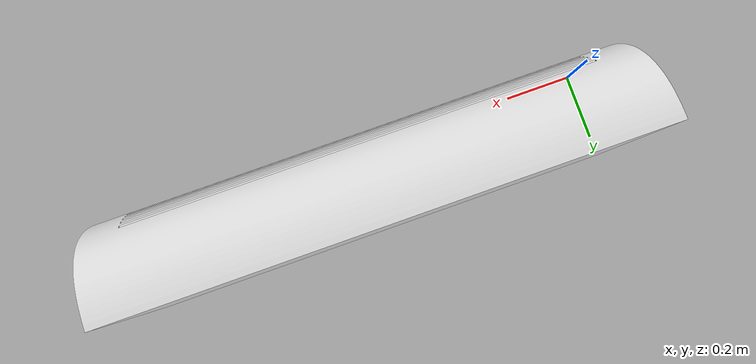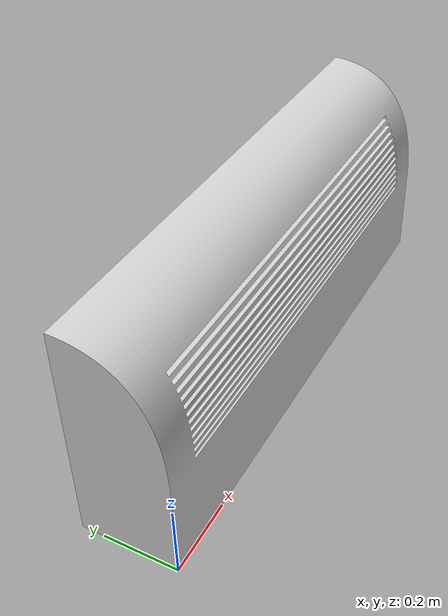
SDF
<?xml version="1.0" ?>
<sdf version="1.5">
  <model name="kaloryfer">
    <static>true</static>
    <link name="link">
      <collision name="collision">
        <geometry>
          <mesh>
            <uri>model://kaloryfer/meshes/Kaloryfer.dae</uri>
          </mesh>
        </geometry>
      </collision>
      <visual name="visual">
        <geometry>
          <mesh>
            <uri>model://kaloryfer/meshes/Kaloryfer.dae</uri>
          </mesh>
        </geometry>
      </visual>
    </link>
  </model>
</sdf>
